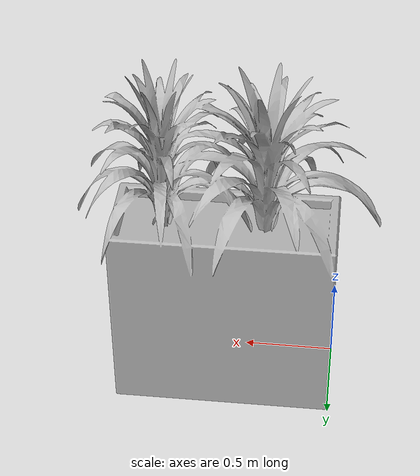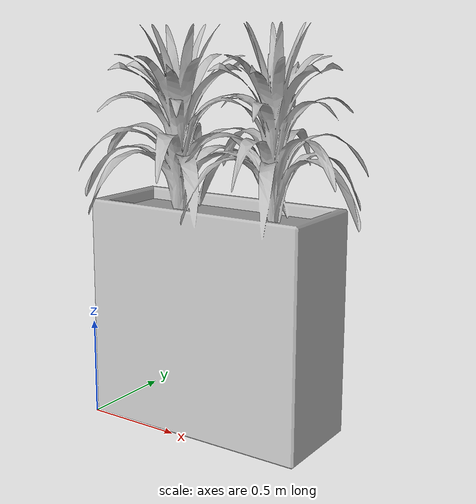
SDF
<?xml version="1.0"?>

<sdf version="1.4">
    <model name="flowerpot">
        <static>true</static>
        <link name="flowerpot_link">

            <visual name="flowerpot_mesh">
                <geometry>
                    <mesh>
                        <uri>model://flowerpot/meshes/model.dae</uri>
                    </mesh>
                </geometry>
            </visual>

            <collision name="flowerpot_collison">
                <pose>0.603162 0.248783 0.590120</pose>
                <geometry>
                    <box>
                        <size>1.201 0.531 1.168</size>
                    </box>
                </geometry>
            </collision>
        </link>
    </model>
</sdf>
